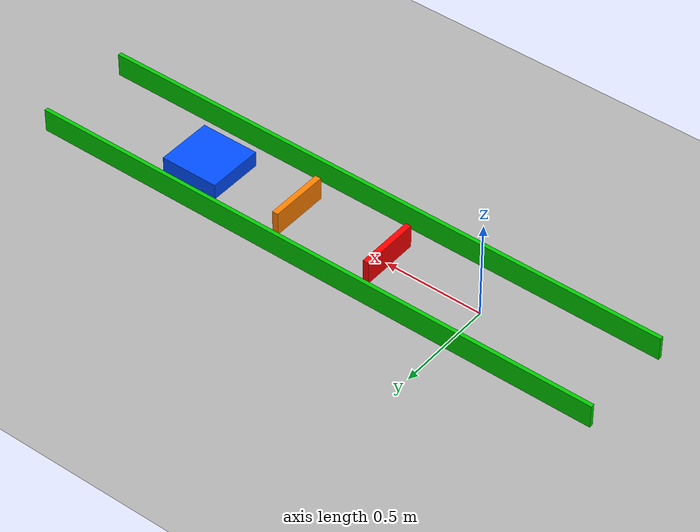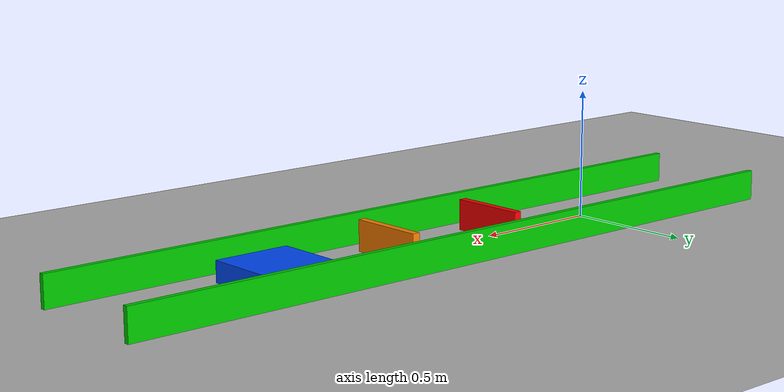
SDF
<?xml version="1.0" ?>
<sdf version="1.8">
  <world name="adas_world">

    <physics name="1ms" type="ignored">
      <max_step_size>0.001</max_step_size>
      <real_time_factor>1.0</real_time_factor>
    </physics>

    <plugin filename="gz-sim-physics-system" name="gz::sim::systems::Physics"/>
    <plugin filename="gz-sim-user-commands-system" name="gz::sim::systems::UserCommands"/>
    <plugin filename="gz-sim-scene-broadcaster-system" name="gz::sim::systems::SceneBroadcaster"/>
    <plugin filename="gz-sim-sensors-system" name="gz::sim::systems::Sensors">
      <render_engine>ogre2</render_engine>
    </plugin>

    <!-- Ground plane -->
    <model name="ground_plane">
      <static>true</static>
      <link name="link">
        <collision name="collision">
          <geometry><plane><normal>0 0 1</normal><size>20 20</size></plane></geometry>
          <surface><friction><ode><mu>1.0</mu><mu2>1.0</mu2></ode></friction></surface>
        </collision>
        <visual name="visual">
          <geometry><plane><normal>0 0 1</normal><size>20 20</size></plane></geometry>
          <material><ambient>0.7 0.7 0.7 1</ambient><diffuse>0.7 0.7 0.7 1</diffuse></material>
        </visual>
      </link>
    </model>

    <!-- RED obstacle - 0.5m ahead - AEB FULL BRAKE zone -->
    <model name="obstacle_red">
      <static>true</static>
      <pose>0.5 0 0.06 0 0 0</pose>
      <link name="link">
        <collision name="collision">
          <geometry><box><size>0.03 0.30 0.12</size></box></geometry>
        </collision>
        <visual name="visual">
          <geometry><box><size>0.03 0.30 0.12</size></box></geometry>
          <material><ambient>1 0 0 1</ambient><diffuse>1 0 0 1</diffuse></material>
        </visual>
      </link>
    </model>

    <!-- ORANGE obstacle - 1.0m ahead - AEB WARNING zone -->
    <model name="obstacle_orange">
      <static>true</static>
      <pose>1.0 0 0.06 0 0 0</pose>
      <link name="link">
        <collision name="collision">
          <geometry><box><size>0.03 0.30 0.12</size></box></geometry>
        </collision>
        <visual name="visual">
          <geometry><box><size>0.03 0.30 0.12</size></box></geometry>
          <material><ambient>1 0.5 0 1</ambient><diffuse>1 0.5 0 1</diffuse></material>
        </visual>
      </link>
    </model>

    <!-- BLUE lead vehicle - 1.5m ahead - ACC follow zone -->
    <model name="lead_vehicle">
      <static>true</static>
      <pose>1.5 0 0.04 0 0 0</pose>
      <link name="link">
        <collision name="collision">
          <geometry><box><size>0.30 0.285 0.08</size></box></geometry>
        </collision>
        <visual name="visual">
          <geometry><box><size>0.30 0.285 0.08</size></box></geometry>
          <material><ambient>0 0.3 1 1</ambient><diffuse>0 0.3 1 1</diffuse></material>
        </visual>
      </link>
    </model>

    <!-- GREEN lane wall LEFT - VL53 left sensor test, 0.25m from robot centre -->
    <model name="wall_left">
      <static>true</static>
      <pose>0.75 0.25 0.06 0 0 0</pose>
      <link name="link">
        <collision name="collision">
          <geometry><box><size>3.0 0.02 0.12</size></box></geometry>
        </collision>
        <visual name="visual">
          <geometry><box><size>3.0 0.02 0.12</size></box></geometry>
          <material><ambient>0.0 0.8 0.0 1</ambient><diffuse>0.0 0.8 0.0 1</diffuse></material>
        </visual>
      </link>
    </model>

    <!-- GREEN lane wall RIGHT - VL53 right sensor test, 0.25m from robot centre -->
    <model name="wall_right">
      <static>true</static>
      <pose>0.75 -0.25 0.06 0 0 0</pose>
      <link name="link">
        <collision name="collision">
          <geometry><box><size>3.0 0.02 0.12</size></box></geometry>
        </collision>
        <visual name="visual">
          <geometry><box><size>3.0 0.02 0.12</size></box></geometry>
          <material><ambient>0.0 0.8 0.0 1</ambient><diffuse>0.0 0.8 0.0 1</diffuse></material>
        </visual>
      </link>
    </model>

  </world>
</sdf>
